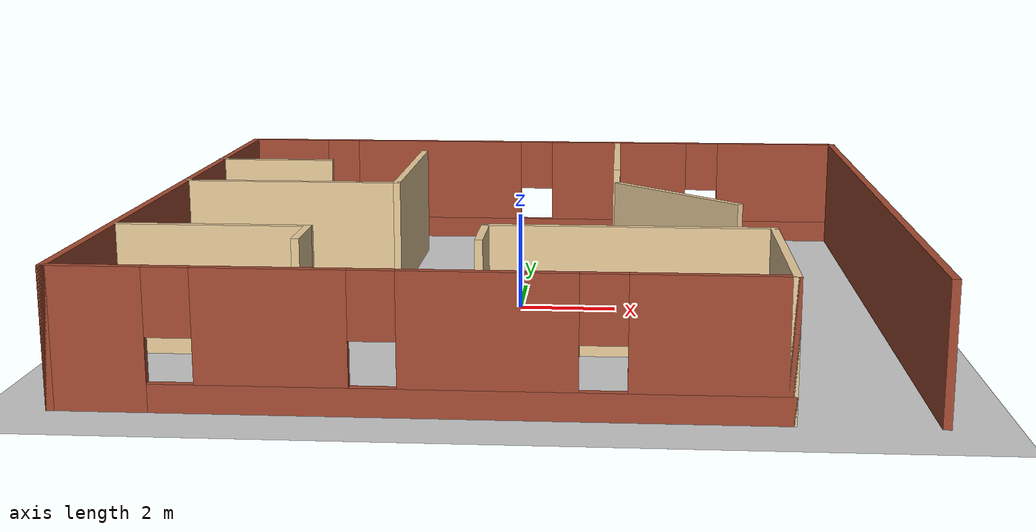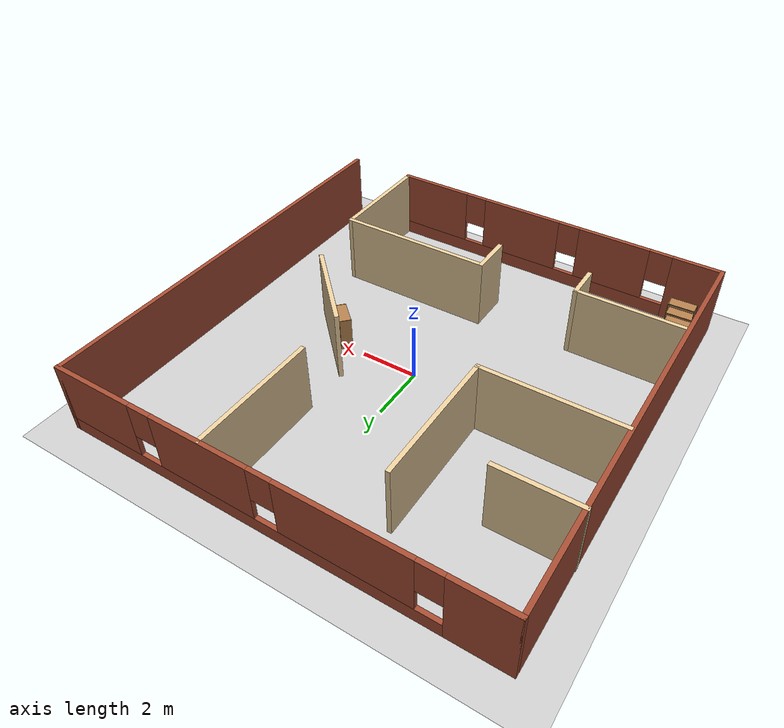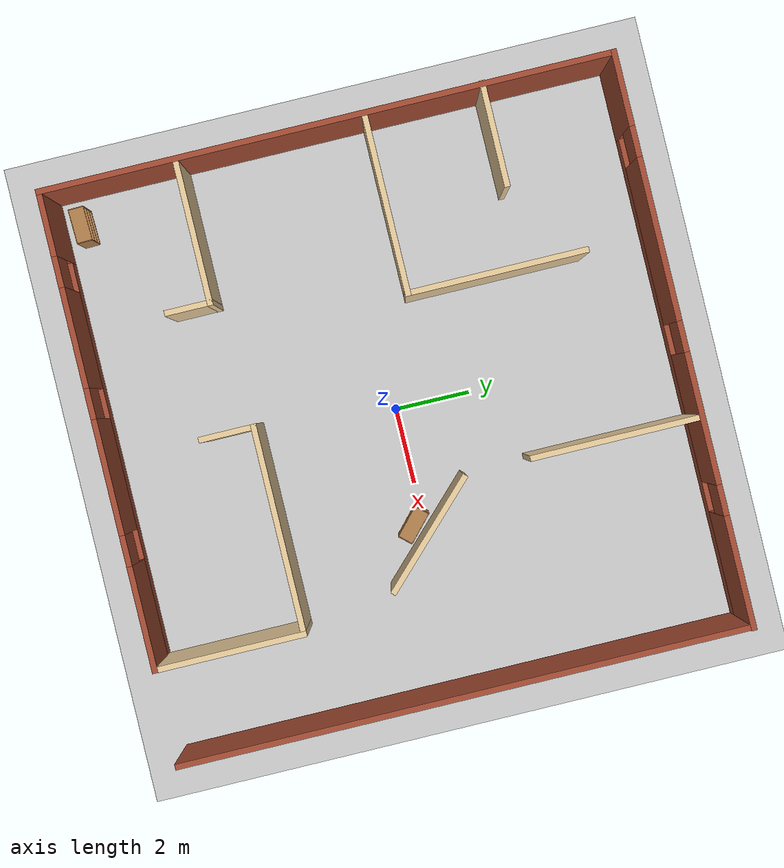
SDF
<sdf version="1.7">
 <world name="default">
  <model name="ground_plane">
   <static>1</static>
   <link name="link">
    <collision name="collision">
     <geometry><plane><normal>0 0 1</normal><size>100 100</size></plane></geometry>
     <surface>
      <contact><collide_bitmask>65535</collide_bitmask></contact>
      <friction><ode><mu>100</mu><mu2>50</mu2></ode></friction>
     </surface>
    </collision>
    <visual name="visual">
     <cast_shadows>0</cast_shadows>
     <geometry><plane><normal>0 0 1</normal><size>100 100</size></plane></geometry>
     <material>
      <script><uri>file://media/materials/scripts/gazebo.material</uri><name>Gazebo/Grey</name></script>
     </material>
    </visual>
   </link>
  </model>
  <model name="gMaze8">
   <link name="Wall_0">
    <pose>0.009097 7.425 0 0 -0 0</pose>
    <visual name="Wall_0_Visual_0">
     <pose>-6.50945 0 1.25 0 -0 0</pose>
     <geometry><box><size>1.98109 0.15 2.5</size></box></geometry>
     <material>
      <script><uri>file://media/materials/scripts/gazebo.material</uri><name>Gazebo/Bricks</name></script>
      <ambient>1 1 1 1</ambient>
     </material>
     <meta><layer>0</layer></meta>
    </visual>
    <collision name="Wall_0_Collision_0">
     <geometry><box><size>1.98109 0.15 2.5</size></box></geometry>
     <pose>-6.50945 0 1.25 0 -0 0</pose>
    </collision>
    <visual name="Wall_0_Visual_1">
     <pose>0.990545 0 0.25 0 -0 0</pose>
     <geometry><box><size>13.0189 0.15 0.5</size></box></geometry>
     <material>
      <script><uri>file://media/materials/scripts/gazebo.material</uri><name>Gazebo/Bricks</name></script>
      <ambient>1 1 1 1</ambient>
     </material>
     <meta><layer>0</layer></meta>
    </visual>
    <collision name="Wall_0_Collision_1">
     <geometry><box><size>13.0189 0.15 0.5</size></box></geometry>
     <pose>0.990545 0 0.25 0 -0 0</pose>
    </collision>
    <visual name="Wall_0_Visual_2">
     <pose>-2.60363 0 1.5 0 -0 0</pose>
     <geometry><box><size>4.23056 0.15 2</size></box></geometry>
     <material>
      <script><uri>file://media/materials/scripts/gazebo.material</uri><name>Gazebo/Bricks</name></script>
      <ambient>1 1 1 1</ambient>
     </material>
     <meta><layer>0</layer></meta>
    </visual>
    <collision name="Wall_0_Collision_2">
     <geometry><box><size>4.23056 0.15 2</size></box></geometry>
     <pose>-2.60363 0 1.5 0 -0 0</pose>
    </collision>
    <visual name="Wall_0_Visual_3">
     <pose>2.02238 0 1.5 0 -0 0</pose>
     <geometry><box><size>3.42145 0.15 2</size></box></geometry>
     <material>
      <script><uri>file://media/materials/scripts/gazebo.material</uri><name>Gazebo/Bricks</name></script>
      <ambient>1 1 1 1</ambient>
     </material>
     <meta><layer>0</layer></meta>
    </visual>
    <collision name="Wall_0_Collision_3">
     <geometry><box><size>3.42145 0.15 2</size></box></geometry>
     <pose>2.02238 0 1.5 0 -0 0</pose>
    </collision>
    <visual name="Wall_0_Visual_4">
     <pose>6.01655 0 1.5 0 -0 0</pose>
     <geometry><box><size>2.9669 0.15 2</size></box></geometry>
     <material>
      <script><uri>file://media/materials/scripts/gazebo.material</uri><name>Gazebo/Bricks</name></script>
      <ambient>1 1 1 1</ambient>
     </material>
     <meta><layer>0</layer></meta>
    </visual>
    <collision name="Wall_0_Collision_4">
     <geometry><box><size>2.9669 0.15 2</size></box></geometry>
     <pose>6.01655 0 1.5 0 -0 0</pose>
    </collision>
    <visual name="Wall_0_Visual_5">
     <pose>-5.11891 0 1.9 0 -0 0</pose>
     <geometry><box><size>0.8 0.15 1.2</size></box></geometry>
     <material>
      <script><uri>file://media/materials/scripts/gazebo.material</uri><name>Gazebo/Bricks</name></script>
      <ambient>1 1 1 1</ambient>
     </material>
     <meta><layer>0</layer></meta>
    </visual>
    <collision name="Wall_0_Collision_5">
     <geometry><box><size>0.8 0.15 1.2</size></box></geometry>
     <pose>-5.11891 0 1.9 0 -0 0</pose>
    </collision>
    <visual name="Wall_0_Visual_6">
     <pose>-0.088347 0 1.9 0 -0 0</pose>
     <geometry><box><size>0.8 0.15 1.2</size></box></geometry>
     <material>
      <script><uri>file://media/materials/scripts/gazebo.material</uri><name>Gazebo/Bricks</name></script>
      <ambient>1 1 1 1</ambient>
     </material>
     <meta><layer>0</layer></meta>
    </visual>
    <collision name="Wall_0_Collision_6">
     <geometry><box><size>0.8 0.15 1.2</size></box></geometry>
     <pose>-0.088347 0 1.9 0 -0 0</pose>
    </collision>
    <visual name="Wall_0_Visual_7">
     <pose>4.1331 0 1.9 0 -0 0</pose>
     <geometry><box><size>0.8 0.15 1.2</size></box></geometry>
     <material>
      <script><uri>file://media/materials/scripts/gazebo.material</uri><name>Gazebo/Bricks</name></script>
      <ambient>1 1 1 1</ambient>
     </material>
     <meta><layer>0</layer></meta>
    </visual>
    <collision name="Wall_0_Collision_7">
     <geometry><box><size>0.8 0.15 1.2</size></box></geometry>
     <pose>4.1331 0 1.9 0 -0 0</pose>
    </collision>
   </link>
   <link name="Wall_1">
    <collision name="Wall_1_Collision">
     <geometry><box><size>15 0.15 2.5</size></box></geometry>
     <pose>0 0 1.25 0 -0 0</pose>
    </collision>
    <visual name="Wall_1_Visual">
     <pose>0 0 1.25 0 -0 0</pose>
     <geometry><box><size>15 0.15 2.5</size></box></geometry>
     <material>
      <script><uri>file://media/materials/scripts/gazebo.material</uri><name>Gazebo/Bricks</name></script>
      <ambient>1 1 1 1</ambient>
     </material>
     <meta><layer>0</layer></meta>
    </visual>
    <pose>7.41398 -0 0 0 -0 -1.5708</pose>
   </link>
   <link name="Wall_3">
    <collision name="Wall_3_Collision">
     <geometry><box><size>15 0.15 2.5</size></box></geometry>
     <pose>0 0 1.25 0 -0 0</pose>
    </collision>
    <visual name="Wall_3_Visual">
     <pose>0 0 1.25 0 -0 0</pose>
     <geometry><box><size>15 0.15 2.5</size></box></geometry>
     <material>
      <script><uri>file://media/materials/scripts/gazebo.material</uri><name>Gazebo/Bricks</name></script>
      <ambient>1 1 1 1</ambient>
     </material>
     <meta><layer>0</layer></meta>
    </visual>
    <pose>-7.4159 -0 0 0 -0 -1.5708</pose>
   </link>
   <link name="Wall_4">
    <pose>-1.2409 -7.425 0 0 -0 0</pose>
    <visual name="Wall_4_Visual_0">
     <pose>-5.37558 0 1.25 0 -0 0</pose>
     <geometry><box><size>1.74884 0.15 2.5</size></box></geometry>
     <material>
      <script><uri>file://media/materials/scripts/gazebo.material</uri><name>Gazebo/Bricks</name></script>
      <ambient>1 1 1 1</ambient>
     </material>
     <meta><layer>0</layer></meta>
    </visual>
    <collision name="Wall_4_Collision_0">
     <geometry><box><size>1.74884 0.15 2.5</size></box></geometry>
     <pose>-5.37558 0 1.25 0 -0 0</pose>
    </collision>
    <visual name="Wall_4_Visual_1">
     <pose>0.87442 0 0.25 0 -0 0</pose>
     <geometry><box><size>10.7512 0.15 0.5</size></box></geometry>
     <material>
      <script><uri>file://media/materials/scripts/gazebo.material</uri><name>Gazebo/Bricks</name></script>
      <ambient>1 1 1 1</ambient>
     </material>
     <meta><layer>0</layer></meta>
    </visual>
    <collision name="Wall_4_Collision_1">
     <geometry><box><size>10.7512 0.15 0.5</size></box></geometry>
     <pose>0.87442 0 0.25 0 -0 0</pose>
    </collision>
    <visual name="Wall_4_Visual_2">
     <pose>-2.40199 0 1.5 0 -0 0</pose>
     <geometry><box><size>2.59834 0.15 2</size></box></geometry>
     <material>
      <script><uri>file://media/materials/scripts/gazebo.material</uri><name>Gazebo/Bricks</name></script>
      <ambient>1 1 1 1</ambient>
     </material>
     <meta><layer>0</layer></meta>
    </visual>
    <collision name="Wall_4_Collision_2">
     <geometry><box><size>2.59834 0.15 2</size></box></geometry>
     <pose>-2.40199 0 1.5 0 -0 0</pose>
    </collision>
    <visual name="Wall_4_Visual_3">
     <pose>1.19683 0 1.5 0 -0 0</pose>
     <geometry><box><size>2.99931 0.15 2</size></box></geometry>
     <material>
      <script><uri>file://media/materials/scripts/gazebo.material</uri><name>Gazebo/Bricks</name></script>
      <ambient>1 1 1 1</ambient>
     </material>
     <meta><layer>0</layer></meta>
    </visual>
    <collision name="Wall_4_Collision_3">
     <geometry><box><size>2.99931 0.15 2</size></box></geometry>
     <pose>1.19683 0 1.5 0 -0 0</pose>
    </collision>
    <visual name="Wall_4_Visual_4">
     <pose>4.87324 0 1.5 0 -0 0</pose>
     <geometry><box><size>2.75352 0.15 2</size></box></geometry>
     <material>
      <script><uri>file://media/materials/scripts/gazebo.material</uri><name>Gazebo/Bricks</name></script>
      <ambient>1 1 1 1</ambient>
     </material>
     <meta><layer>0</layer></meta>
    </visual>
    <collision name="Wall_4_Collision_4">
     <geometry><box><size>2.75352 0.15 2</size></box></geometry>
     <pose>4.87324 0 1.5 0 -0 0</pose>
    </collision>
    <visual name="Wall_4_Visual_5">
     <pose>-4.10116 0 1.9 0 -0 0</pose>
     <geometry><box><size>0.8 0.15 1.2</size></box></geometry>
     <material>
      <script><uri>file://media/materials/scripts/gazebo.material</uri><name>Gazebo/Bricks</name></script>
      <ambient>1 1 1 1</ambient>
     </material>
     <meta><layer>0</layer></meta>
    </visual>
    <collision name="Wall_4_Collision_5">
     <geometry><box><size>0.8 0.15 1.2</size></box></geometry>
     <pose>-4.10116 0 1.9 0 -0 0</pose>
    </collision>
    <visual name="Wall_4_Visual_6">
     <pose>-0.702821 0 1.9 0 -0 0</pose>
     <geometry><box><size>0.8 0.15 1.2</size></box></geometry>
     <material>
      <script><uri>file://media/materials/scripts/gazebo.material</uri><name>Gazebo/Bricks</name></script>
      <ambient>1 1 1 1</ambient>
     </material>
     <meta><layer>0</layer></meta>
    </visual>
    <collision name="Wall_4_Collision_6">
     <geometry><box><size>0.8 0.15 1.2</size></box></geometry>
     <pose>-0.702821 0 1.9 0 -0 0</pose>
    </collision>
    <visual name="Wall_4_Visual_7">
     <pose>3.09648 0 1.9 0 -0 0</pose>
     <geometry><box><size>0.8 0.15 1.2</size></box></geometry>
     <material>
      <script><uri>file://media/materials/scripts/gazebo.material</uri><name>Gazebo/Bricks</name></script>
      <ambient>1 1 1 1</ambient>
     </material>
     <meta><layer>0</layer></meta>
    </visual>
    <collision name="Wall_4_Collision_7">
     <geometry><box><size>0.8 0.15 1.2</size></box></geometry>
     <pose>3.09648 0 1.9 0 -0 0</pose>
    </collision>
   </link>
   <link name="Wall_56">
    <collision name="Wall_56_Collision">
     <geometry><box><size>4 0.15 2.5</size></box></geometry>
     <pose>0 0 1.25 0 -0 0</pose>
    </collision>
    <visual name="Wall_56_Visual">
     <pose>0 0 1.25 0 -0 0</pose>
     <geometry><box><size>4 0.15 2.5</size></box></geometry>
     <material>
      <script><uri>file://media/materials/scripts/gazebo.material</uri><name>Gazebo/Grey</name></script>
      <ambient>0.921569 0.807843 0.615686 1</ambient>
     </material>
     <meta><layer>0</layer></meta>
    </visual>
    <pose>4.9341 -5.5 0 0 -0 1.5708</pose>
   </link>
   <link name="Wall_57">
    <collision name="Wall_57_Collision">
     <geometry><box><size>5.5 0.15 2.5</size></box></geometry>
     <pose>0 0 1.25 0 -0 0</pose>
    </collision>
    <visual name="Wall_57_Visual">
     <pose>0 0 1.25 0 -0 0</pose>
     <geometry><box><size>5.5 0.15 2.5</size></box></geometry>
     <material>
      <script><uri>file://media/materials/scripts/gazebo.material</uri><name>Gazebo/Grey</name></script>
      <ambient>0.921569 0.807843 0.615686 1</ambient>
     </material>
     <meta><layer>0</layer></meta>
    </visual>
    <pose>2.2591 -3.575 0 0 -0 3.14159</pose>
   </link>
   <link name="Wall_58">
    <collision name="Wall_58_Collision">
     <geometry><box><size>1.5 0.15 2.5</size></box></geometry>
     <pose>0 0 1.25 0 -0 0</pose>
    </collision>
    <visual name="Wall_58_Visual">
     <pose>0 0 1.25 0 -0 0</pose>
     <geometry><box><size>1.5 0.15 2.5</size></box></geometry>
     <material>
      <script><uri>file://media/materials/scripts/gazebo.material</uri><name>Gazebo/Grey</name></script>
      <ambient>0.921569 0.807843 0.615686 1</ambient>
     </material>
     <meta><layer>0</layer></meta>
    </visual>
    <pose>-0.415903 -4.25 0 0 -0 -1.5708</pose>
   </link>
   <link name="Wall_64">
    <collision name="Wall_64_Collision">
     <geometry><box><size>4.75 0.15 2.5</size></box></geometry>
     <pose>0 0 1.25 0 -0 0</pose>
    </collision>
    <visual name="Wall_64_Visual">
     <pose>0 0 1.25 0 -0 0</pose>
     <geometry><box><size>4.75 0.15 2.5</size></box></geometry>
     <material>
      <script><uri>file://media/materials/scripts/gazebo.material</uri><name>Gazebo/Grey</name></script>
      <ambient>0.921569 0.807843 0.615686 1</ambient>
     </material>
     <meta><layer>0</layer></meta>
    </visual>
    <pose>-5.06125 0.974344 0 0 -0 0</pose>
   </link>
   <link name="Wall_65">
    <collision name="Wall_65_Collision">
     <geometry><box><size>4.75 0.15 2.5</size></box></geometry>
     <pose>0 0 1.25 0 -0 0</pose>
    </collision>
    <visual name="Wall_65_Visual">
     <pose>0 0 1.25 0 -0 0</pose>
     <geometry><box><size>4.75 0.15 2.5</size></box></geometry>
     <material>
      <script><uri>file://media/materials/scripts/gazebo.material</uri><name>Gazebo/Grey</name></script>
      <ambient>0.921569 0.807843 0.615686 1</ambient>
     </material>
     <meta><layer>0</layer></meta>
    </visual>
    <pose>-2.76125 3.27434 0 0 -0 1.5708</pose>
   </link>
   <link name="Wall_67">
    <collision name="Wall_67_Collision">
     <geometry><box><size>3.5 0.15 2.5</size></box></geometry>
     <pose>0 0 1.25 0 -0 0</pose>
    </collision>
    <visual name="Wall_67_Visual">
     <pose>0 0 1.25 0 -0 0</pose>
     <geometry><box><size>3.5 0.15 2.5</size></box></geometry>
     <material>
      <script><uri>file://media/materials/scripts/gazebo.material</uri><name>Gazebo/Grey</name></script>
      <ambient>0.921569 0.807843 0.615686 1</ambient>
     </material>
     <meta><layer>0</layer></meta>
    </visual>
    <pose>3.25106 0.07137 0 0 -0 -0.785398</pose>
   </link>
   <link name="Wall_69">
    <collision name="Wall_69_Collision">
     <geometry><box><size>4.5 0.15 2.5</size></box></geometry>
     <pose>0 0 1.25 0 -0 0</pose>
    </collision>
    <visual name="Wall_69_Visual">
     <pose>0 0 1.25 0 -0 0</pose>
     <geometry><box><size>4.5 0.15 2.5</size></box></geometry>
     <material>
      <script><uri>file://media/materials/scripts/gazebo.material</uri><name>Gazebo/Grey</name></script>
      <ambient>0.921569 0.807843 0.615686 1</ambient>
     </material>
     <meta><layer>0</layer></meta>
    </visual>
    <pose>1.9963 5.22489 0 0 -0 1.5708</pose>
   </link>
   <link name="Wall_71">
    <collision name="Wall_71_Collision">
     <geometry><box><size>1.25 0.15 2.5</size></box></geometry>
     <pose>0 0 1.25 0 -0 0</pose>
    </collision>
    <visual name="Wall_71_Visual">
     <pose>0 0 1.25 0 -0 0</pose>
     <geometry><box><size>1.25 0.15 2.5</size></box></geometry>
     <material>
      <script><uri>file://media/materials/scripts/gazebo.material</uri><name>Gazebo/Grey</name></script>
      <ambient>0.921569 0.807843 0.615686 1</ambient>
     </material>
     <meta><layer>0</layer></meta>
    </visual>
    <pose>-3.70266 -4.45605 0 0 -0 1.5708</pose>
   </link>
   <link name="Wall_72">
    <collision name="Wall_72_Collision">
     <geometry><box><size>3.75 0.15 2.5</size></box></geometry>
     <pose>0 0 1.25 0 -0 0</pose>
    </collision>
    <visual name="Wall_72_Visual">
     <pose>0 0 1.25 0 -0 0</pose>
     <geometry><box><size>3.75 0.15 2.5</size></box></geometry>
     <material>
      <script><uri>file://media/materials/scripts/gazebo.material</uri><name>Gazebo/Grey</name></script>
      <ambient>0.921569 0.807843 0.615686 1</ambient>
     </material>
     <meta><layer>0</layer></meta>
    </visual>
    <pose>-5.50266 -3.90605 0 0 -0 3.14159</pose>
   </link>
   <link name="Wall_74">
    <collision name="Wall_74_Collision">
     <geometry><box><size>2.75 0.15 2.5</size></box></geometry>
     <pose>0 0 1.25 0 -0 0</pose>
    </collision>
    <visual name="Wall_74_Visual">
     <pose>0 0 1.25 0 -0 0</pose>
     <geometry><box><size>2.75 0.15 2.5</size></box></geometry>
     <material>
      <script><uri>file://media/materials/scripts/gazebo.material</uri><name>Gazebo/Grey</name></script>
      <ambient>0.921569 0.807843 0.615686 1</ambient>
     </material>
     <meta><layer>0</layer></meta>
    </visual>
    <pose>-6.1341 4.03233 0 0 -0 0</pose>
   </link>
   <static>1</static>
  </model>
  <model name="bookshelf_1">
   <static>1</static>
   <link name="link">
    <inertial><mass>1</mass></inertial>
    <collision name="back">
     <pose>0 0.005 0.6 0 -0 0</pose>
     <geometry><box><size>0.9 0.01 1.2</size></box></geometry>
    </collision>
    <visual name="visual1">
     <pose>0 0.005 0.6 0 -0 0</pose>
     <geometry><box><size>0.9 0.01 1.2</size></box></geometry>
     <material>
      <script><uri>file://media/materials/scripts/gazebo.material</uri><name>Gazebo/Wood</name></script>
     </material>
    </visual>
    <collision name="left_side">
     <pose>0.45 -0.195 0.6 0 -0 0</pose>
     <geometry><box><size>0.02 0.4 1.2</size></box></geometry>
    </collision>
    <visual name="visual2">
     <pose>0.45 -0.195 0.6 0 -0 0</pose>
     <geometry><box><size>0.02 0.4 1.2</size></box></geometry>
     <material>
      <script><uri>file://media/materials/scripts/gazebo.material</uri><name>Gazebo/Wood</name></script>
     </material>
    </visual>
    <collision name="right_side">
     <pose>-0.45 -0.195 0.6 0 -0 0</pose>
     <geometry><box><size>0.02 0.4 1.2</size></box></geometry>
    </collision>
    <visual name="visual3">
     <pose>-0.45 -0.195 0.6 0 -0 0</pose>
     <geometry><box><size>0.02 0.4 1.2</size></box></geometry>
     <material>
      <script><uri>file://media/materials/scripts/gazebo.material</uri><name>Gazebo/Wood</name></script>
     </material>
    </visual>
    <collision name="bottom">
     <pose>0 -0.195 0.03 0 -0 0</pose>
     <geometry><box><size>0.88 0.4 0.06</size></box></geometry>
    </collision>
    <visual name="visual4">
     <pose>0 -0.195 0.03 0 -0 0</pose>
     <geometry><box><size>0.88 0.4 0.06</size></box></geometry>
     <material>
      <script><uri>file://media/materials/scripts/gazebo.material</uri><name>Gazebo/Wood</name></script>
     </material>
    </visual>
    <collision name="top">
     <pose>0 -0.195 1.19 0 -0 0</pose>
     <geometry><box><size>0.88 0.4 0.02</size></box></geometry>
    </collision>
    <visual name="visual5">
     <pose>0 -0.195 1.19 0 -0 0</pose>
     <geometry><box><size>0.88 0.4 0.02</size></box></geometry>
     <material>
      <script><uri>file://media/materials/scripts/gazebo.material</uri><name>Gazebo/Wood</name></script>
     </material>
    </visual>
    <collision name="low_shelf">
     <pose>0 -0.195 0.43 0 -0 0</pose>
     <geometry><box><size>0.88 0.4 0.02</size></box></geometry>
    </collision>
    <visual name="visual6">
     <pose>0 -0.195 0.43 0 -0 0</pose>
     <geometry><box><size>0.88 0.4 0.02</size></box></geometry>
     <material>
      <script><uri>file://media/materials/scripts/gazebo.material</uri><name>Gazebo/Wood</name></script>
     </material>
    </visual>
    <collision name="high_shelf">
     <pose>0 -0.195 0.8 0 -0 0</pose>
     <geometry><box><size>0.88 0.4 0.02</size></box></geometry>
    </collision>
    <visual name="visual7">
     <pose>0 -0.195 0.8 0 -0 0</pose>
     <geometry><box><size>0.88 0.4 0.02</size></box></geometry>
     <material>
      <script><uri>file://media/materials/scripts/gazebo.material</uri><name>Gazebo/Wood</name></script>
     </material>
    </visual>
   </link>
   <pose>3.14505 -0.114743 0 0 0 -0.741513</pose>
  </model>
  <model name="bookshelf_2">
   <static>1</static>
   <link name="link">
    <inertial><mass>1</mass></inertial>
    <collision name="back">
     <pose>0 0.005 0.6 0 -0 0</pose>
     <geometry><box><size>0.9 0.01 1.2</size></box></geometry>
    </collision>
    <visual name="visual1">
     <pose>0 0.005 0.6 0 -0 0</pose>
     <geometry><box><size>0.9 0.01 1.2</size></box></geometry>
     <material>
      <script><uri>file://media/materials/scripts/gazebo.material</uri><name>Gazebo/Wood</name></script>
     </material>
    </visual>
    <collision name="left_side">
     <pose>0.45 -0.195 0.6 0 -0 0</pose>
     <geometry><box><size>0.02 0.4 1.2</size></box></geometry>
    </collision>
    <visual name="visual2">
     <pose>0.45 -0.195 0.6 0 -0 0</pose>
     <geometry><box><size>0.02 0.4 1.2</size></box></geometry>
     <material>
      <script><uri>file://media/materials/scripts/gazebo.material</uri><name>Gazebo/Wood</name></script>
     </material>
    </visual>
    <collision name="right_side">
     <pose>-0.45 -0.195 0.6 0 -0 0</pose>
     <geometry><box><size>0.02 0.4 1.2</size></box></geometry>
    </collision>
    <visual name="visual3">
     <pose>-0.45 -0.195 0.6 0 -0 0</pose>
     <geometry><box><size>0.02 0.4 1.2</size></box></geometry>
     <material>
      <script><uri>file://media/materials/scripts/gazebo.material</uri><name>Gazebo/Wood</name></script>
     </material>
    </visual>
    <collision name="bottom">
     <pose>0 -0.195 0.03 0 -0 0</pose>
     <geometry><box><size>0.88 0.4 0.06</size></box></geometry>
    </collision>
    <visual name="visual4">
     <pose>0 -0.195 0.03 0 -0 0</pose>
     <geometry><box><size>0.88 0.4 0.06</size></box></geometry>
     <material>
      <script><uri>file://media/materials/scripts/gazebo.material</uri><name>Gazebo/Wood</name></script>
     </material>
    </visual>
    <collision name="top">
     <pose>0 -0.195 1.19 0 -0 0</pose>
     <geometry><box><size>0.88 0.4 0.02</size></box></geometry>
    </collision>
    <visual name="visual5">
     <pose>0 -0.195 1.19 0 -0 0</pose>
     <geometry><box><size>0.88 0.4 0.02</size></box></geometry>
     <material>
      <script><uri>file://media/materials/scripts/gazebo.material</uri><name>Gazebo/Wood</name></script>
     </material>
    </visual>
    <collision name="low_shelf">
     <pose>0 -0.195 0.43 0 -0 0</pose>
     <geometry><box><size>0.88 0.4 0.02</size></box></geometry>
    </collision>
    <visual name="visual6">
     <pose>0 -0.195 0.43 0 -0 0</pose>
     <geometry><box><size>0.88 0.4 0.02</size></box></geometry>
     <material>
      <script><uri>file://media/materials/scripts/gazebo.material</uri><name>Gazebo/Wood</name></script>
     </material>
    </visual>
    <collision name="high_shelf">
     <pose>0 -0.195 0.8 0 -0 0</pose>
     <geometry><box><size>0.88 0.4 0.02</size></box></geometry>
    </collision>
    <visual name="visual7">
     <pose>0 -0.195 0.8 0 -0 0</pose>
     <geometry><box><size>0.88 0.4 0.02</size></box></geometry>
     <material>
      <script><uri>file://media/materials/scripts/gazebo.material</uri><name>Gazebo/Wood</name></script>
     </material>
    </visual>
   </link>
   <pose>-6.55401 -7.00553 0 0 0 -3.11024</pose>
  </model>
 </world>
</sdf>
